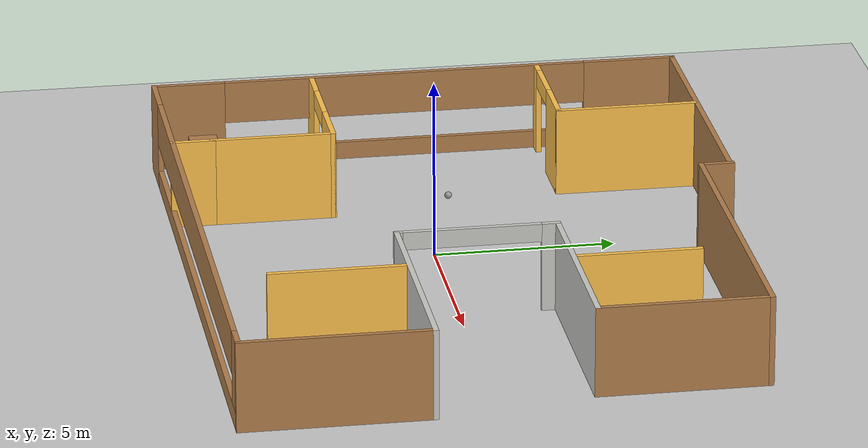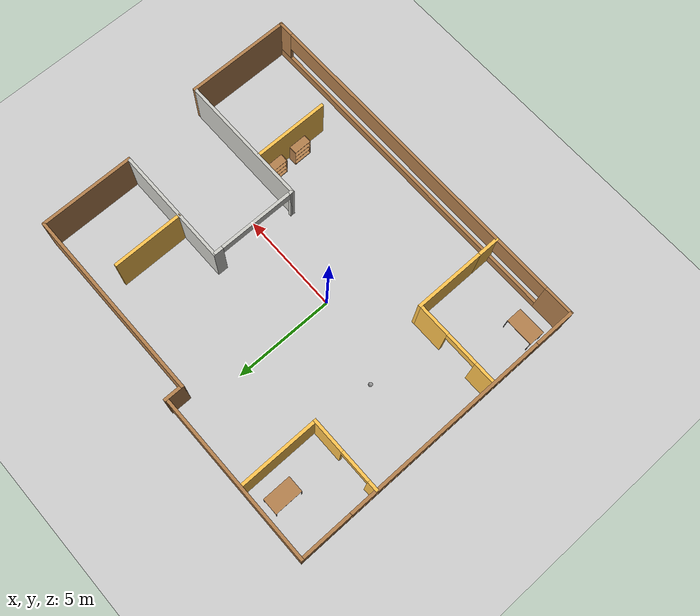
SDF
<sdf version="1.6">
 <world name="default">
  <plugin name="init" filename="libhello.so"/>
  <light name="sun" type="directional">
   <pose>0 0 10 0 -0 0</pose>
   <diffuse>0.8 0.8 0.8 1</diffuse>
   <specular>0.1 0.1 0.1 1</specular>
   <attenuation>
    <range>1000</range>
    <constant>0.9</constant>
    <linear>0.01</linear>
    <quadratic>0.001</quadratic>
   </attenuation>
   <direction>-0.5 0.5 -1</direction>
  </light>
  <model name="ground_plane">
   <static>1</static>
   <link name="link">
    <collision name="collision">
     <geometry><plane><normal>0 0 1</normal><size>100 100</size></plane></geometry>
     <surface><friction><ode><mu>100</mu><mu2>50</mu2></ode></friction></surface>
    </collision>
    <visual name="visual">
     <cast_shadows>0</cast_shadows>
     <geometry><plane><normal>0 0 1</normal><size>100 100</size></plane></geometry>
     <material>
      <script><uri>file://media/materials/scripts/gazebo.material</uri><name>Gazebo/Grey</name></script>
     </material>
    </visual>
   </link>
  </model>
  <gravity>0 0 -9.8</gravity>
  <magnetic_field>6e-06 2.3e-05 -4.2e-05</magnetic_field>
  <atmosphere type="adiabatic"/>
  <physics name="default_physics" default="0" type="ode">
   <max_step_size>0.001</max_step_size>
   <real_time_factor>1</real_time_factor>
   <real_time_update_rate>1000</real_time_update_rate>
  </physics>
  <scene><ambient>0.4 0.4 0.4 1</ambient><background>0.7 0.7 0.7 1</background><shadows>1</shadows></scene>
  <spherical_coordinates>
   <surface_model>EARTH_WGS84</surface_model>
   <latitude_deg>0</latitude_deg>
   <longitude_deg>0</longitude_deg>
   <elevation>0</elevation>
   <heading_deg>0</heading_deg>
  </spherical_coordinates>
  <model name="myworld">
   <pose>1.6461 0.663712 0 0 -0 0</pose>
   <link name="Wall_0">
    <pose>-9.17496 -0.025 0 0 -0 1.5708</pose>
    <visual name="Wall_0_Visual_0">
     <pose>-6.46415 0 1.25 0 -0 0</pose>
     <geometry><box><size>2.0717 0.15 2.5</size></box></geometry>
     <material>
      <script><uri>file://media/materials/scripts/gazebo.material</uri><name>Gazebo/Wood</name></script>
      <ambient>0.996078 0.47451 0.0196078 1</ambient>
     </material>
    </visual>
    <collision name="Wall_0_Collision_0">
     <geometry><box><size>2.0717 0.15 2.5</size></box></geometry>
     <pose>-6.46415 0 1.25 0 -0 0</pose>
    </collision>
    <visual name="Wall_0_Visual_1">
     <pose>1.03585 0 0.25 0 -0 0</pose>
     <geometry><box><size>12.9283 0.15 0.5</size></box></geometry>
     <material>
      <script><uri>file://media/materials/scripts/gazebo.material</uri><name>Gazebo/Wood</name></script>
      <ambient>0.996078 0.47451 0.0196078 1</ambient>
     </material>
    </visual>
    <collision name="Wall_0_Collision_1">
     <geometry><box><size>12.9283 0.15 0.5</size></box></geometry>
     <pose>1.03585 0 0.25 0 -0 0</pose>
    </collision>
    <visual name="Wall_0_Visual_2">
     <pose>6.18498 0 1.5 0 -0 0</pose>
     <geometry><box><size>2.63004 0.15 2</size></box></geometry>
     <material>
      <script><uri>file://media/materials/scripts/gazebo.material</uri><name>Gazebo/Wood</name></script>
      <ambient>0.996078 0.47451 0.0196078 1</ambient>
     </material>
    </visual>
    <collision name="Wall_0_Collision_2">
     <geometry><box><size>2.63004 0.15 2</size></box></geometry>
     <pose>6.18498 0 1.5 0 -0 0</pose>
    </collision>
    <visual name="Wall_0_Visual_3">
     <pose>-0.279169 0 1.9 0 -0 0</pose>
     <geometry><box><size>10.2983 0.15 1.2</size></box></geometry>
     <material>
      <script><uri>file://media/materials/scripts/gazebo.material</uri><name>Gazebo/Wood</name></script>
      <ambient>0.996078 0.47451 0.0196078 1</ambient>
     </material>
    </visual>
    <collision name="Wall_0_Collision_3">
     <geometry><box><size>10.2983 0.15 1.2</size></box></geometry>
     <pose>-0.279169 0 1.9 0 -0 0</pose>
    </collision>
   </link>
   <link name="Wall_10">
    <collision name="Wall_10_Collision">
     <geometry><box><size>9.5 0.15 2.5</size></box></geometry>
     <pose>0 0 1.25 0 -0 0</pose>
    </collision>
    <visual name="Wall_10_Visual">
     <pose>0 0 1.25 0 -0 0</pose>
     <geometry><box><size>9.5 0.15 2.5</size></box></geometry>
     <material>
      <script><uri>file://media/materials/scripts/gazebo.material</uri><name>Gazebo/Wood</name></script>
      <ambient>0.996078 0.47451 0.0196078 1</ambient>
     </material>
    </visual>
    <pose>3.75004 6.6 0 0 -0 3.14159</pose>
   </link>
   <link name="Wall_11">
    <collision name="Wall_11_Collision">
     <geometry><box><size>1 0.15 2.5</size></box></geometry>
     <pose>0 0 1.25 0 -0 0</pose>
    </collision>
    <visual name="Wall_11_Visual">
     <pose>0 0 1.25 0 -0 0</pose>
     <geometry><box><size>1 0.15 2.5</size></box></geometry>
     <material>
      <script><uri>file://media/materials/scripts/gazebo.material</uri><name>Gazebo/Wood</name></script>
      <ambient>0.996078 0.47451 0.0196078 1</ambient>
     </material>
    </visual>
    <pose>-0.924962 7.025 0 0 -0 1.5708</pose>
   </link>
   <link name="Wall_13">
    <pose>-7.00004 -2.98416 0 0 -0 0</pose>
    <visual name="Wall_13_Visual_0">
     <pose>-1.6734 0 1.25 0 -0 0</pose>
     <geometry><box><size>1.15319 0.15 2.5</size></box></geometry>
     <material>
      <script><uri>file://media/materials/scripts/gazebo.material</uri><name>Gazebo/Grey</name></script>
      <ambient>1 0.764706 0.305882 1</ambient>
     </material>
    </visual>
    <collision name="Wall_13_Collision_0">
     <geometry><box><size>1.15319 0.15 2.5</size></box></geometry>
     <pose>-1.6734 0 1.25 0 -0 0</pose>
    </collision>
    <visual name="Wall_13_Visual_1">
     <pose>1.39368 0 1.25 0 -0 0</pose>
     <geometry><box><size>1.71264 0.15 2.5</size></box></geometry>
     <material>
      <script><uri>file://media/materials/scripts/gazebo.material</uri><name>Gazebo/Grey</name></script>
      <ambient>1 0.764706 0.305882 1</ambient>
     </material>
    </visual>
    <collision name="Wall_13_Collision_1">
     <geometry><box><size>1.71264 0.15 2.5</size></box></geometry>
     <pose>1.39368 0 1.25 0 -0 0</pose>
    </collision>
    <visual name="Wall_13_Visual_2">
     <pose>-0.279725 0 2.25 0 -0 0</pose>
     <geometry><box><size>1.63417 0.15 0.5</size></box></geometry>
     <material>
      <script><uri>file://media/materials/scripts/gazebo.material</uri><name>Gazebo/Grey</name></script>
      <ambient>1 0.764706 0.305882 1</ambient>
     </material>
    </visual>
    <collision name="Wall_13_Collision_2">
     <geometry><box><size>1.63417 0.15 0.5</size></box></geometry>
     <pose>-0.279725 0 2.25 0 -0 0</pose>
    </collision>
   </link>
   <link name="Wall_14">
    <collision name="Wall_14_Collision">
     <geometry><box><size>3.5 0.15 2.5</size></box></geometry>
     <pose>0 0 1.25 0 -0 0</pose>
    </collision>
    <visual name="Wall_14_Visual">
     <pose>0 0 1.25 0 -0 0</pose>
     <geometry><box><size>3.5 0.15 2.5</size></box></geometry>
     <material>
      <script><uri>file://media/materials/scripts/gazebo.material</uri><name>Gazebo/Grey</name></script>
      <ambient>1 0.764706 0.305882 1</ambient>
     </material>
    </visual>
    <pose>-4.82504 -4.65916 0 0 0 -1.5708</pose>
   </link>
   <link name="Wall_15">
    <collision name="Wall_15_Collision">
     <geometry><box><size>1.25 0.15 2.5</size></box></geometry>
     <pose>0 0 1.25 0 -0 0</pose>
    </collision>
    <visual name="Wall_15_Visual">
     <pose>0 0 1.25 0 -0 0</pose>
     <geometry><box><size>1.25 0.15 2.5</size></box></geometry>
     <material>
      <script><uri>file://media/materials/scripts/gazebo.material</uri><name>Gazebo/Grey</name></script>
      <ambient>1 0.764706 0.305882 1</ambient>
     </material>
    </visual>
    <pose>-4.82504 -6.88416 0 0 0 -1.5708</pose>
   </link>
   <link name="Wall_17">
    <collision name="Wall_17_Collision">
     <geometry><box><size>3.75 0.15 2.5</size></box></geometry>
     <pose>0 0 1.25 0 -0 0</pose>
    </collision>
    <visual name="Wall_17_Visual">
     <pose>0 0 1.25 0 -0 0</pose>
     <geometry><box><size>3.75 0.15 2.5</size></box></geometry>
     <material>
      <script><uri>file://media/materials/scripts/gazebo.material</uri><name>Gazebo/Grey</name></script>
      <ambient>1 0.764706 0.305882 1</ambient>
     </material>
    </visual>
    <pose>4.8312 -4.25691 0 0 0 -1.5708</pose>
   </link>
   <link name="Wall_2">
    <collision name="Wall_2_Collision">
     <geometry><box><size>8.25 0.15 2.5</size></box></geometry>
     <pose>0 0 1.25 0 -0 0</pose>
    </collision>
    <visual name="Wall_2_Visual">
     <pose>0 0 1.25 0 -0 0</pose>
     <geometry><box><size>8.25 0.15 2.5</size></box></geometry>
     <material>
      <script><uri>file://media/materials/scripts/gazebo.material</uri><name>Gazebo/Wood</name></script>
      <ambient>1 1 1 1</ambient>
     </material>
    </visual>
    <pose>-5.12496 7.4 0 0 -0 0</pose>
   </link>
   <link name="Wall_20">
    <collision name="Wall_20_Collision">
     <geometry><box><size>3.5 0.15 2.5</size></box></geometry>
     <pose>0 0 1.25 0 -0 0</pose>
    </collision>
    <visual name="Wall_20_Visual">
     <pose>0 0 1.25 0 -0 0</pose>
     <geometry><box><size>3.5 0.15 2.5</size></box></geometry>
     <material>
      <script><uri>file://media/materials/scripts/gazebo.material</uri><name>Gazebo/Grey</name></script>
      <ambient>1 0.764706 0.305882 1</ambient>
     </material>
    </visual>
    <pose>4.92388 3.727 0 0 -0 1.5708</pose>
   </link>
   <link name="Wall_22">
    <pose>-7.33996 3.47825 0 0 -0 0</pose>
    <visual name="Wall_22_Visual_0">
     <pose>-1.61858 0 1.25 0 -0 0</pose>
     <geometry><box><size>0.51285 0.15 2.5</size></box></geometry>
     <material>
      <script><uri>file://media/materials/scripts/gazebo.material</uri><name>Gazebo/Grey</name></script>
      <ambient>1 0.764706 0.305882 1</ambient>
     </material>
    </visual>
    <collision name="Wall_22_Collision_0">
     <geometry><box><size>0.51285 0.15 2.5</size></box></geometry>
     <pose>-1.61858 0 1.25 0 -0 0</pose>
    </collision>
    <visual name="Wall_22_Visual_1">
     <pose>1.02744 0 1.25 0 -0 0</pose>
     <geometry><box><size>1.69512 0.15 2.5</size></box></geometry>
     <material>
      <script><uri>file://media/materials/scripts/gazebo.material</uri><name>Gazebo/Grey</name></script>
      <ambient>1 0.764706 0.305882 1</ambient>
     </material>
    </visual>
    <collision name="Wall_22_Collision_1">
     <geometry><box><size>1.69512 0.15 2.5</size></box></geometry>
     <pose>1.02744 0 1.25 0 -0 0</pose>
    </collision>
    <visual name="Wall_22_Visual_2">
     <pose>-0.591135 0 2.25 0 -0 0</pose>
     <geometry><box><size>1.54203 0.15 0.5</size></box></geometry>
     <material>
      <script><uri>file://media/materials/scripts/gazebo.material</uri><name>Gazebo/Grey</name></script>
      <ambient>1 0.764706 0.305882 1</ambient>
     </material>
    </visual>
    <collision name="Wall_22_Collision_2">
     <geometry><box><size>1.54203 0.15 0.5</size></box></geometry>
     <pose>-0.591135 0 2.25 0 -0 0</pose>
    </collision>
   </link>
   <link name="Wall_23">
    <collision name="Wall_23_Collision">
     <geometry><box><size>4 0.15 2.5</size></box></geometry>
     <pose>0 0 1.25 0 -0 0</pose>
    </collision>
    <visual name="Wall_23_Visual">
     <pose>0 0 1.25 0 -0 0</pose>
     <geometry><box><size>4 0.15 2.5</size></box></geometry>
     <material>
      <script><uri>file://media/materials/scripts/gazebo.material</uri><name>Gazebo/Grey</name></script>
      <ambient>1 0.764706 0.305882 1</ambient>
     </material>
    </visual>
    <pose>-5.53996 5.40325 0 0 -0 1.5708</pose>
   </link>
   <link name="Wall_4">
    <pose>3.9e-05 -7.45 0 0 -0 0</pose>
    <visual name="Wall_4_Visual_0">
     <pose>-8.48986 0 1.25 0 -0 0</pose>
     <geometry><box><size>1.52028 0.15 2.5</size></box></geometry>
     <material>
      <script><uri>file://media/materials/scripts/gazebo.material</uri><name>Gazebo/Wood</name></script>
      <ambient>0.996078 0.47451 0.0196078 1</ambient>
     </material>
    </visual>
    <collision name="Wall_4_Collision_0">
     <geometry><box><size>1.52028 0.15 2.5</size></box></geometry>
     <pose>-8.48986 0 1.25 0 -0 0</pose>
    </collision>
    <visual name="Wall_4_Visual_1">
     <pose>0.760137 0 0.25 0 -0 0</pose>
     <geometry><box><size>16.9797 0.15 0.5</size></box></geometry>
     <material>
      <script><uri>file://media/materials/scripts/gazebo.material</uri><name>Gazebo/Wood</name></script>
      <ambient>0.996078 0.47451 0.0196078 1</ambient>
     </material>
    </visual>
    <collision name="Wall_4_Collision_1">
     <geometry><box><size>16.9797 0.15 0.5</size></box></geometry>
     <pose>0.760137 0 0.25 0 -0 0</pose>
    </collision>
    <visual name="Wall_4_Visual_2">
     <pose>8.8467 0 1.5 0 -0 0</pose>
     <geometry><box><size>0.806606 0.15 2</size></box></geometry>
     <material>
      <script><uri>file://media/materials/scripts/gazebo.material</uri><name>Gazebo/Wood</name></script>
      <ambient>0.996078 0.47451 0.0196078 1</ambient>
     </material>
    </visual>
    <collision name="Wall_4_Collision_2">
     <geometry><box><size>0.806606 0.15 2</size></box></geometry>
     <pose>8.8467 0 1.5 0 -0 0</pose>
    </collision>
    <visual name="Wall_4_Visual_3">
     <pose>0.356834 0 1.9 0 -0 0</pose>
     <geometry><box><size>16.1731 0.15 1.2</size></box></geometry>
     <material>
      <script><uri>file://media/materials/scripts/gazebo.material</uri><name>Gazebo/Wood</name></script>
      <ambient>0.996078 0.47451 0.0196078 1</ambient>
     </material>
    </visual>
    <collision name="Wall_4_Collision_3">
     <geometry><box><size>16.1731 0.15 1.2</size></box></geometry>
     <pose>0.356834 0 1.9 0 -0 0</pose>
    </collision>
   </link>
   <link name="Wall_5">
    <collision name="Wall_5_Collision">
     <geometry><box><size>5.25 0.15 2.5</size></box></geometry>
     <pose>0 0 1.25 0 -0 0</pose>
    </collision>
    <visual name="Wall_5_Visual">
     <pose>0 0 1.25 0 -0 0</pose>
     <geometry><box><size>5.25 0.15 2.5</size></box></geometry>
     <material>
      <script><uri>file://media/materials/scripts/gazebo.material</uri><name>Gazebo/Wood</name></script>
      <ambient>0.996078 0.47451 0.0196078 1</ambient>
     </material>
    </visual>
    <pose>9.17504 -4.9 0 0 -0 1.5708</pose>
   </link>
   <link name="Wall_6">
    <collision name="Wall_6_Collision">
     <geometry><box><size>6.75 0.15 2.5</size></box></geometry>
     <pose>0 0 1.25 0 -0 0</pose>
    </collision>
    <visual name="Wall_6_Visual">
     <pose>0 0 1.25 0 -0 0</pose>
     <geometry><box><size>6.75 0.15 2.5</size></box></geometry>
     <material>
      <script><uri>file://media/materials/scripts/gazebo.material</uri><name>Gazebo/CeilingTiled</name></script>
      <ambient>1 0.764706 0.305882 1</ambient>
     </material>
    </visual>
    <pose>5.87504 -2.35 0 0 -0 3.14159</pose>
   </link>
   <link name="Wall_7">
    <pose>2.57504 -0.175 0 0 -0 1.5708</pose>
    <visual name="Wall_7_Visual_0">
     <pose>-2.13074 0 1.25 0 -0 0</pose>
     <geometry><box><size>0.238524 0.15 2.5</size></box></geometry>
     <material>
      <script><uri>file://media/materials/scripts/gazebo.material</uri><name>Gazebo/CeilingTiled</name></script>
      <ambient>1 0.764706 0.305882 1</ambient>
     </material>
    </visual>
    <collision name="Wall_7_Collision_0">
     <geometry><box><size>0.238524 0.15 2.5</size></box></geometry>
     <pose>-2.13074 0 1.25 0 -0 0</pose>
    </collision>
    <visual name="Wall_7_Visual_1">
     <pose>1.99237 0 1.25 0 -0 0</pose>
     <geometry><box><size>0.515255 0.15 2.5</size></box></geometry>
     <material>
      <script><uri>file://media/materials/scripts/gazebo.material</uri><name>Gazebo/CeilingTiled</name></script>
      <ambient>1 0.764706 0.305882 1</ambient>
     </material>
    </visual>
    <collision name="Wall_7_Collision_1">
     <geometry><box><size>0.515255 0.15 2.5</size></box></geometry>
     <pose>1.99237 0 1.25 0 -0 0</pose>
    </collision>
    <visual name="Wall_7_Visual_2">
     <pose>-0.138365 0 2.25 0 -0 0</pose>
     <geometry><box><size>3.74622 0.15 0.5</size></box></geometry>
     <material>
      <script><uri>file://media/materials/scripts/gazebo.material</uri><name>Gazebo/CeilingTiled</name></script>
      <ambient>1 0.764706 0.305882 1</ambient>
     </material>
    </visual>
    <collision name="Wall_7_Collision_2">
     <geometry><box><size>3.74622 0.15 0.5</size></box></geometry>
     <pose>-0.138365 0 2.25 0 -0 0</pose>
    </collision>
   </link>
   <link name="Wall_8">
    <collision name="Wall_8_Collision">
     <geometry><box><size>6 0.15 2.5</size></box></geometry>
     <pose>0 0 1.25 0 -0 0</pose>
    </collision>
    <visual name="Wall_8_Visual">
     <pose>0 0 1.25 0 -0 0</pose>
     <geometry><box><size>6 0.15 2.5</size></box></geometry>
     <material>
      <script><uri>file://media/materials/scripts/gazebo.material</uri><name>Gazebo/CeilingTiled</name></script>
      <ambient>1 0.764706 0.305882 1</ambient>
     </material>
    </visual>
    <pose>5.50004 2 0 0 -0 0</pose>
   </link>
   <link name="Wall_9">
    <collision name="Wall_9_Collision">
     <geometry><box><size>4.75 0.15 2.5</size></box></geometry>
     <pose>0 0 1.25 0 -0 0</pose>
    </collision>
    <visual name="Wall_9_Visual">
     <pose>0 0 1.25 0 -0 0</pose>
     <geometry><box><size>4.75 0.15 2.5</size></box></geometry>
     <material>
      <script><uri>file://media/materials/scripts/gazebo.material</uri><name>Gazebo/Wood</name></script>
      <ambient>0.996078 0.47451 0.0196078 1</ambient>
     </material>
    </visual>
    <pose>8.42504 4.3 0 0 -0 1.5708</pose>
   </link>
   <static>1</static>
  </model>
  <model name="my_ball">
   <link name="link">
    <pose>0 0 -0.4 0 -0 0</pose>
    <inertial>
     <mass>1</mass>
     <inertia><ixx>0.1</ixx><ixy>0</ixy><ixz>0</ixz><iyy>0.1</iyy><iyz>0</iyz><izz>0.1</izz></inertia>
    </inertial>
    <visual name="visual">
     <geometry><sphere><radius>0.1</radius></sphere></geometry>
     <material>
      <script><name>Gazebo/Grey</name><uri>file://media/materials/scripts/gazebo.material</uri></script>
      <ambient>1 1 1 1</ambient>
      <diffuse>1 1 1 1</diffuse>
      <specular>1 1 1 1</specular>
      <emissive>1 1 1 1</emissive>
      <shader type="vertex"><normal_map>__default__</normal_map></shader>
     </material>
    </visual>
    <collision name="collision">
     <geometry><sphere><radius>0.1</radius></sphere></geometry>
     <surface>
      <friction>
       <ode><mu>1</mu><mu2>1</mu2><fdir1>0 0 0</fdir1><slip1>0</slip1><slip2>0</slip2></ode>
       <torsional>
        <coefficient>1</coefficient>
        <patch_radius>0</patch_radius>
        <surface_radius>0</surface_radius>
        <use_patch_radius>1</use_patch_radius>
        <ode><slip>0</slip></ode>
       </torsional>
      </friction>
      <bounce><restitution_coefficient>0</restitution_coefficient><threshold>1e+06</threshold></bounce>
      <contact>
       <collide_without_contact>0</collide_without_contact>
       <collide_without_contact_bitmask>1</collide_without_contact_bitmask>
       <collide_bitmask>1</collide_bitmask>
       <ode>
        <soft_cfm>0</soft_cfm>
        <soft_erp>0.2</soft_erp>
        <kp>1e+13</kp>
        <kd>1</kd>
        <max_vel>0.01</max_vel>
        <min_depth>0</min_depth>
       </ode>
       <bullet>
        <split_impulse>1</split_impulse>
        <split_impulse_penetration_threshold>-0.01</split_impulse_penetration_threshold>
        <soft_cfm>0</soft_cfm>
        <soft_erp>0.2</soft_erp>
        <kp>1e+13</kp>
        <kd>1</kd>
       </bullet>
      </contact>
     </surface>
    </collision>
   </link>
   <static>0</static>
   <pose>-3.99163 1.03416 0.5 0 -0 0</pose>
  </model>
  <plugin name="collision_map_creator" filename="libcollision_map_creator.so"/>
  <model name="bookshelf">
   <static>1</static>
   <link name="link">
    <inertial><mass>1</mass></inertial>
    <collision name="back">
     <pose>0 0.005 0.6 0 -0 0</pose>
     <geometry><box><size>0.9 0.01 1.2</size></box></geometry>
    </collision>
    <visual name="visual1">
     <pose>0 0.005 0.6 0 -0 0</pose>
     <geometry><box><size>0.9 0.01 1.2</size></box></geometry>
     <material>
      <script><uri>file://media/materials/scripts/gazebo.material</uri><name>Gazebo/Wood</name></script>
     </material>
    </visual>
    <collision name="left_side">
     <pose>0.45 -0.195 0.6 0 -0 0</pose>
     <geometry><box><size>0.02 0.4 1.2</size></box></geometry>
    </collision>
    <visual name="visual2">
     <pose>0.45 -0.195 0.6 0 -0 0</pose>
     <geometry><box><size>0.02 0.4 1.2</size></box></geometry>
     <material>
      <script><uri>file://media/materials/scripts/gazebo.material</uri><name>Gazebo/Wood</name></script>
     </material>
    </visual>
    <collision name="right_side">
     <pose>-0.45 -0.195 0.6 0 -0 0</pose>
     <geometry><box><size>0.02 0.4 1.2</size></box></geometry>
    </collision>
    <visual name="visual3">
     <pose>-0.45 -0.195 0.6 0 -0 0</pose>
     <geometry><box><size>0.02 0.4 1.2</size></box></geometry>
     <material>
      <script><uri>file://media/materials/scripts/gazebo.material</uri><name>Gazebo/Wood</name></script>
     </material>
    </visual>
    <collision name="bottom">
     <pose>0 -0.195 0.03 0 -0 0</pose>
     <geometry><box><size>0.88 0.4 0.06</size></box></geometry>
    </collision>
    <visual name="visual4">
     <pose>0 -0.195 0.03 0 -0 0</pose>
     <geometry><box><size>0.88 0.4 0.06</size></box></geometry>
     <material>
      <script><uri>file://media/materials/scripts/gazebo.material</uri><name>Gazebo/Wood</name></script>
     </material>
    </visual>
    <collision name="top">
     <pose>0 -0.195 1.19 0 -0 0</pose>
     <geometry><box><size>0.88 0.4 0.02</size></box></geometry>
    </collision>
    <visual name="visual5">
     <pose>0 -0.195 1.19 0 -0 0</pose>
     <geometry><box><size>0.88 0.4 0.02</size></box></geometry>
     <material>
      <script><uri>file://media/materials/scripts/gazebo.material</uri><name>Gazebo/Wood</name></script>
     </material>
    </visual>
    <collision name="low_shelf">
     <pose>0 -0.195 0.43 0 -0 0</pose>
     <geometry><box><size>0.88 0.4 0.02</size></box></geometry>
    </collision>
    <visual name="visual6">
     <pose>0 -0.195 0.43 0 -0 0</pose>
     <geometry><box><size>0.88 0.4 0.02</size></box></geometry>
     <material>
      <script><uri>file://media/materials/scripts/gazebo.material</uri><name>Gazebo/Wood</name></script>
     </material>
    </visual>
    <collision name="high_shelf">
     <pose>0 -0.195 0.8 0 -0 0</pose>
     <geometry><box><size>0.88 0.4 0.02</size></box></geometry>
    </collision>
    <visual name="visual7">
     <pose>0 -0.195 0.8 0 -0 0</pose>
     <geometry><box><size>0.88 0.4 0.02</size></box></geometry>
     <material>
      <script><uri>file://media/materials/scripts/gazebo.material</uri><name>Gazebo/Wood</name></script>
     </material>
    </visual>
   </link>
   <pose>6.31689 -2.40843 0 0 0 -1.56075</pose>
  </model>
  <model name="bookshelf_clone">
   <static>1</static>
   <link name="link">
    <inertial><mass>1</mass></inertial>
    <collision name="back">
     <pose>0 0.005 0.6 0 -0 0</pose>
     <geometry><box><size>0.9 0.01 1.2</size></box></geometry>
    </collision>
    <visual name="visual1">
     <pose>0 0.005 0.6 0 -0 0</pose>
     <geometry><box><size>0.9 0.01 1.2</size></box></geometry>
     <material>
      <script><uri>file://media/materials/scripts/gazebo.material</uri><name>Gazebo/Wood</name></script>
     </material>
    </visual>
    <collision name="left_side">
     <pose>0.45 -0.195 0.6 0 -0 0</pose>
     <geometry><box><size>0.02 0.4 1.2</size></box></geometry>
    </collision>
    <visual name="visual2">
     <pose>0.45 -0.195 0.6 0 -0 0</pose>
     <geometry><box><size>0.02 0.4 1.2</size></box></geometry>
     <material>
      <script><uri>file://media/materials/scripts/gazebo.material</uri><name>Gazebo/Wood</name></script>
     </material>
    </visual>
    <collision name="right_side">
     <pose>-0.45 -0.195 0.6 0 -0 0</pose>
     <geometry><box><size>0.02 0.4 1.2</size></box></geometry>
    </collision>
    <visual name="visual3">
     <pose>-0.45 -0.195 0.6 0 -0 0</pose>
     <geometry><box><size>0.02 0.4 1.2</size></box></geometry>
     <material>
      <script><uri>file://media/materials/scripts/gazebo.material</uri><name>Gazebo/Wood</name></script>
     </material>
    </visual>
    <collision name="bottom">
     <pose>0 -0.195 0.03 0 -0 0</pose>
     <geometry><box><size>0.88 0.4 0.06</size></box></geometry>
    </collision>
    <visual name="visual4">
     <pose>0 -0.195 0.03 0 -0 0</pose>
     <geometry><box><size>0.88 0.4 0.06</size></box></geometry>
     <material>
      <script><uri>file://media/materials/scripts/gazebo.material</uri><name>Gazebo/Wood</name></script>
     </material>
    </visual>
    <collision name="top">
     <pose>0 -0.195 1.19 0 -0 0</pose>
     <geometry><box><size>0.88 0.4 0.02</size></box></geometry>
    </collision>
    <visual name="visual5">
     <pose>0 -0.195 1.19 0 -0 0</pose>
     <geometry><box><size>0.88 0.4 0.02</size></box></geometry>
     <material>
      <script><uri>file://media/materials/scripts/gazebo.material</uri><name>Gazebo/Wood</name></script>
     </material>
    </visual>
    <collision name="low_shelf">
     <pose>0 -0.195 0.43 0 -0 0</pose>
     <geometry><box><size>0.88 0.4 0.02</size></box></geometry>
    </collision>
    <visual name="visual6">
     <pose>0 -0.195 0.43 0 -0 0</pose>
     <geometry><box><size>0.88 0.4 0.02</size></box></geometry>
     <material>
      <script><uri>file://media/materials/scripts/gazebo.material</uri><name>Gazebo/Wood</name></script>
     </material>
    </visual>
    <collision name="high_shelf">
     <pose>0 -0.195 0.8 0 -0 0</pose>
     <geometry><box><size>0.88 0.4 0.02</size></box></geometry>
    </collision>
    <visual name="visual7">
     <pose>0 -0.195 0.8 0 -0 0</pose>
     <geometry><box><size>0.88 0.4 0.02</size></box></geometry>
     <material>
      <script><uri>file://media/materials/scripts/gazebo.material</uri><name>Gazebo/Wood</name></script>
     </material>
    </visual>
   </link>
   <pose>6.33552 -3.82796 0 0 0 -1.56075</pose>
  </model>
  <model name="table">
   <static>0</static>
   <link name="link">
    <collision name="surface">
     <pose>0 0 1 0 -0 0</pose>
     <geometry><box><size>1.5 0.8 0.03</size></box></geometry>
     <surface><friction><ode><mu>0.6</mu><mu2>0.6</mu2></ode></friction></surface>
    </collision>
    <visual name="visual1">
     <pose>0 0 1 0 -0 0</pose>
     <geometry><box><size>1.4 0.8 0.04</size></box></geometry>
     <material>
      <script><uri>file://media/materials/scripts/gazebo.material</uri><name>Gazebo/Wood</name></script>
     </material>
    </visual>
    <collision name="front_left_leg">
     <pose>0.68 0.38 0.5 0 -0 0</pose>
     <geometry><cylinder><radius>0.02</radius><length>1</length></cylinder></geometry>
    </collision>
    <visual name="front_left_leg">
     <pose>0.68 0.38 0.5 0 -0 0</pose>
     <geometry><cylinder><radius>0.02</radius><length>1</length></cylinder></geometry>
     <material>
      <script><uri>file://media/materials/scripts/gazebo.material</uri><name>Gazebo/Grey</name></script>
     </material>
    </visual>
    <collision name="front_right_leg">
     <pose>0.68 -0.38 0.5 0 -0 0</pose>
     <geometry><cylinder><radius>0.02</radius><length>1</length></cylinder></geometry>
    </collision>
    <visual name="front_right_leg">
     <pose>0.68 -0.38 0.5 0 -0 0</pose>
     <geometry><cylinder><radius>0.02</radius><length>1</length></cylinder></geometry>
     <material>
      <script><uri>file://media/materials/scripts/gazebo.material</uri><name>Gazebo/Grey</name></script>
     </material>
    </visual>
    <collision name="back_right_leg">
     <pose>-0.68 -0.38 0.5 0 -0 0</pose>
     <geometry><cylinder><radius>0.02</radius><length>1</length></cylinder></geometry>
    </collision>
    <visual name="back_right_leg">
     <pose>-0.68 -0.38 0.5 0 -0 0</pose>
     <geometry><cylinder><radius>0.02</radius><length>1</length></cylinder></geometry>
     <material>
      <script><uri>file://media/materials/scripts/gazebo.material</uri><name>Gazebo/Grey</name></script>
     </material>
    </visual>
    <collision name="back_left_leg">
     <pose>-0.68 0.38 0.5 0 -0 0</pose>
     <geometry><cylinder><radius>0.02</radius><length>1</length></cylinder></geometry>
    </collision>
    <visual name="back_left_leg">
     <pose>-0.68 0.38 0.5 0 -0 0</pose>
     <geometry><cylinder><radius>0.02</radius><length>1</length></cylinder></geometry>
     <material>
      <script><uri>file://media/materials/scripts/gazebo.material</uri><name>Gazebo/Grey</name></script>
     </material>
    </visual>
    <inertial>
     <inertia><ixx>1</ixx><ixy>0</ixy><ixz>0</ixz><iyy>1</iyy><iyz>0</iyz><izz>1</izz></inertia>
     <mass>1</mass>
    </inertial>
   </link>
   <pose>-5.11521 6.96226 -3e-06 0 -4e-06 -1.57136</pose>
  </model>
  <model name="table_0">
   <static>0</static>
   <link name="link">
    <collision name="surface">
     <pose>0 0 1 0 -0 0</pose>
     <geometry><box><size>1.5 0.8 0.03</size></box></geometry>
     <surface><friction><ode><mu>0.6</mu><mu2>0.6</mu2></ode></friction></surface>
    </collision>
    <visual name="visual1">
     <pose>0 0 1 0 -0 0</pose>
     <geometry><box><size>1.4 0.8 0.04</size></box></geometry>
     <material>
      <script><uri>file://media/materials/scripts/gazebo.material</uri><name>Gazebo/Wood</name></script>
     </material>
    </visual>
    <collision name="front_left_leg">
     <pose>0.68 0.38 0.5 0 -0 0</pose>
     <geometry><cylinder><radius>0.02</radius><length>1</length></cylinder></geometry>
    </collision>
    <visual name="front_left_leg">
     <pose>0.68 0.38 0.5 0 -0 0</pose>
     <geometry><cylinder><radius>0.02</radius><length>1</length></cylinder></geometry>
     <material>
      <script><uri>file://media/materials/scripts/gazebo.material</uri><name>Gazebo/Grey</name></script>
     </material>
    </visual>
    <collision name="front_right_leg">
     <pose>0.68 -0.38 0.5 0 -0 0</pose>
     <geometry><cylinder><radius>0.02</radius><length>1</length></cylinder></geometry>
    </collision>
    <visual name="front_right_leg">
     <pose>0.68 -0.38 0.5 0 -0 0</pose>
     <geometry><cylinder><radius>0.02</radius><length>1</length></cylinder></geometry>
     <material>
      <script><uri>file://media/materials/scripts/gazebo.material</uri><name>Gazebo/Grey</name></script>
     </material>
    </visual>
    <collision name="back_right_leg">
     <pose>-0.68 -0.38 0.5 0 -0 0</pose>
     <geometry><cylinder><radius>0.02</radius><length>1</length></cylinder></geometry>
    </collision>
    <visual name="back_right_leg">
     <pose>-0.68 -0.38 0.5 0 -0 0</pose>
     <geometry><cylinder><radius>0.02</radius><length>1</length></cylinder></geometry>
     <material>
      <script><uri>file://media/materials/scripts/gazebo.material</uri><name>Gazebo/Grey</name></script>
     </material>
    </visual>
    <collision name="back_left_leg">
     <pose>-0.68 0.38 0.5 0 -0 0</pose>
     <geometry><cylinder><radius>0.02</radius><length>1</length></cylinder></geometry>
    </collision>
    <visual name="back_left_leg">
     <pose>-0.68 0.38 0.5 0 -0 0</pose>
     <geometry><cylinder><radius>0.02</radius><length>1</length></cylinder></geometry>
     <material>
      <script><uri>file://media/materials/scripts/gazebo.material</uri><name>Gazebo/Grey</name></script>
     </material>
    </visual>
    <inertial>
     <inertia><ixx>1</ixx><ixy>0</ixy><ixz>0</ixz><iyy>1</iyy><iyz>0</iyz><izz>1</izz></inertia>
     <mass>1</mass>
    </inertial>
   </link>
   <pose>-6.61538 -5.47142 -9e-06 1e-06 -1e-06 0</pose>
  </model>
 </world>
</sdf>
